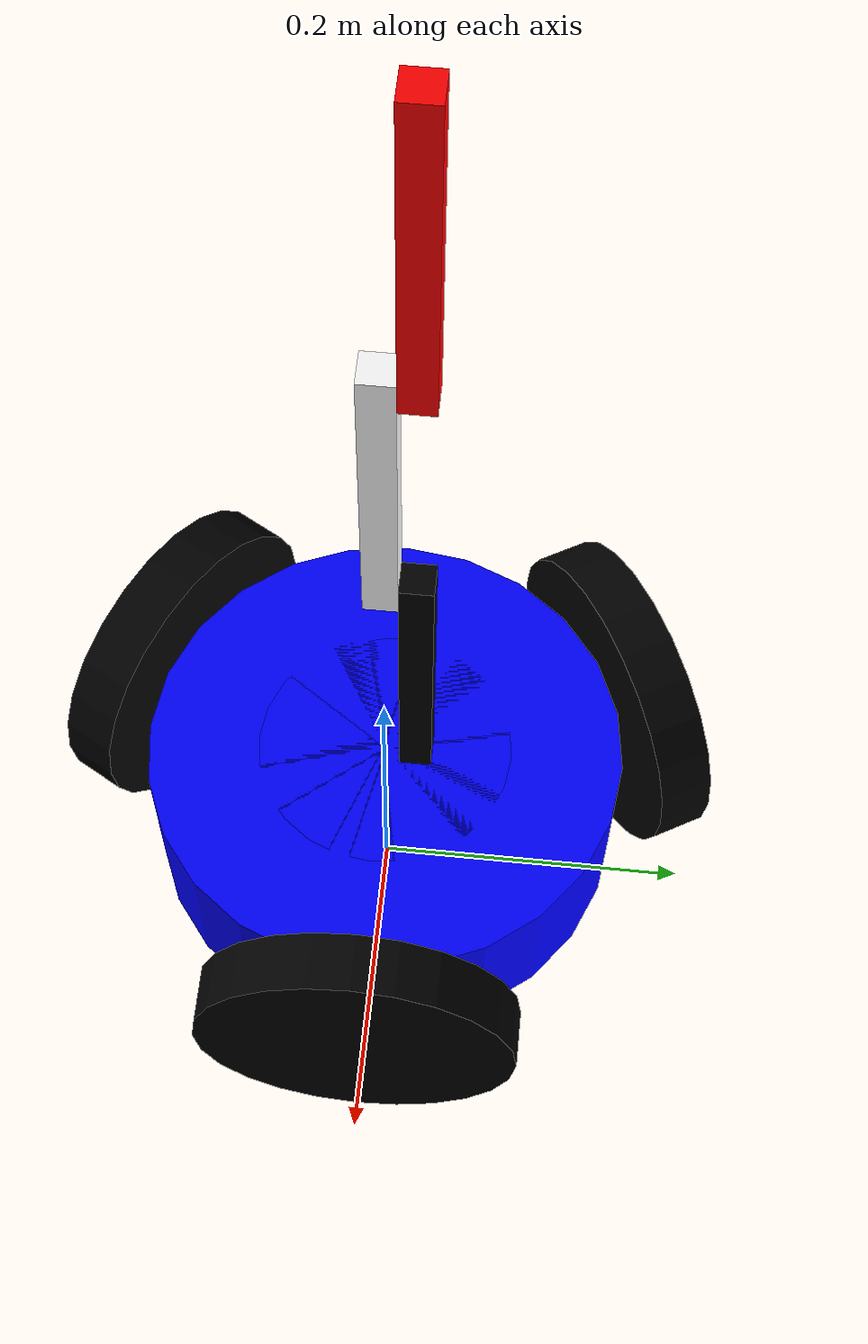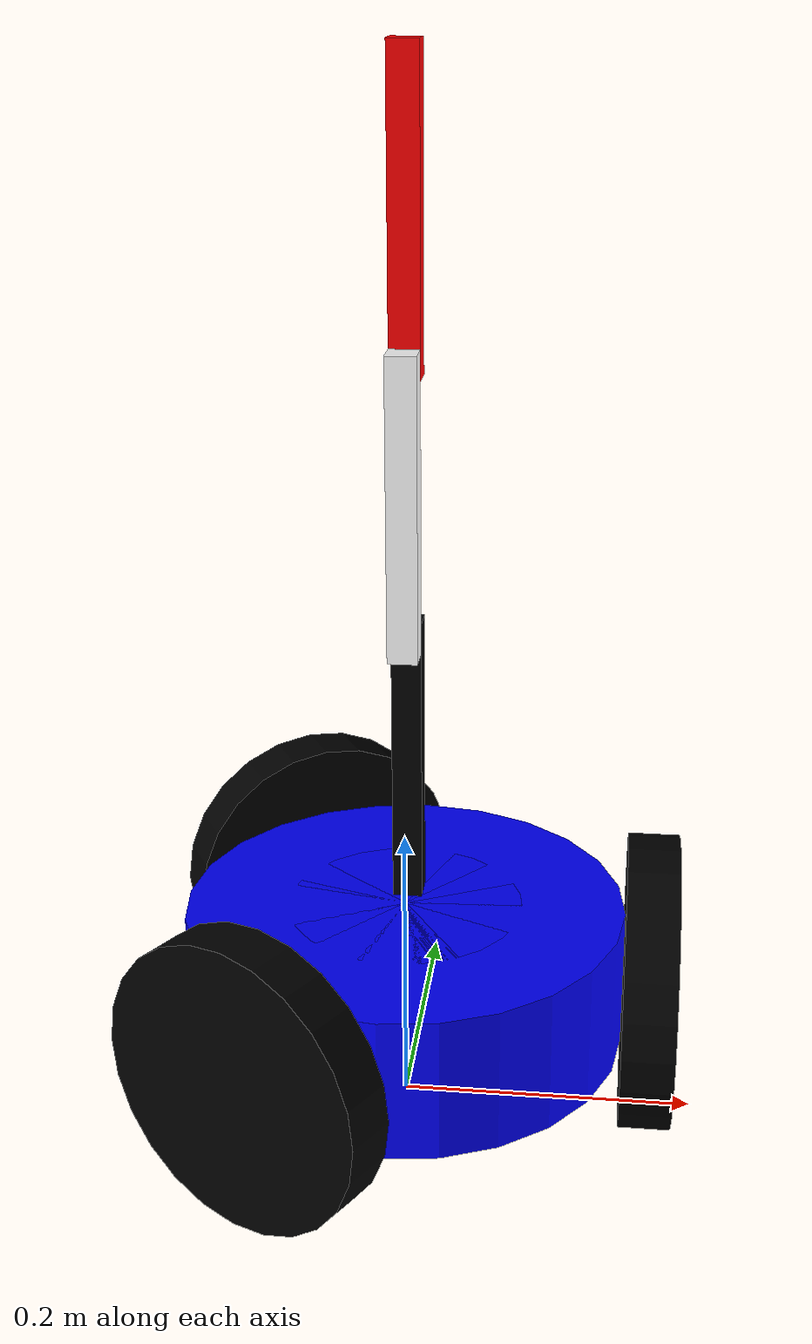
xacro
<?xml version="1.0"?>
<robot xmlns:xacro="http://www.ros.org/wiki/xacro" name="omni_mobile">
    <xacro:include filename="$(find lib_omni_mobile)/urdf/materials.xacro" />
	<xacro:property name="PI" value="3.14" />
    <xacro:property name="base_link_length" value="0.1" />
    <xacro:property name="base_link_radius" value="0.15" />
	<xacro:property name="wheel_length" value="0.035" />
	<xacro:property name="wheel_radius" value="0.1" />
	<xacro:property name="offset" value="0.02" />
    <xacro:property name="base_arm_length" value="0.05" />
    <xacro:property name="base_arm_radius" value="0.08" />
    <xacro:property name="link_width" value="0.02" />
	<xacro:property name="link1_length" value="0.20" />
	<xacro:property name="link2_length" value="0.20" />
	<xacro:property name="link3_length" value="0.20" />

	<!-- Mobile -->
    <link name="base_link">
		<visual>
			<geometry>
				<cylinder length="${base_link_length}" radius="${base_link_radius}"/>
			</geometry>
			<origin xyz="0 0 ${base_link_length/2+wheel_radius/2}"/>
			<material name="blue"/>
		</visual>
		<collision>
			<geometry>
				<cylinder length="${base_link_length}" radius="${base_link_radius}"/>
			</geometry>
			<origin xyz="0 0 ${base_link_length/2+wheel_radius/2}"/>
			<material name="blue"/>
		</collision>
	</link>

	<joint name="jwheel_1" type="revolute">
		<parent link="base_link"/>
		<child link="wheel_1"/>
		<origin xyz="${base_link_radius+wheel_length/2} 0 ${base_link_length}" rpy="0 ${PI/2} 0"/>
		<axis xyz="0 0 1"/>
		<limit effort="1000" lower="${-PI}" upper="${PI}" velocity="5"/>
	</joint>

	<link name="wheel_1">
		<visual>
			<geometry>
				<cylinder length="${wheel_length}" radius="${wheel_radius}"/>
			</geometry>
			<origin xyz="0 0 0"/>
			<material name="black"/>
		</visual>
		<collision>
			<geometry>
				<cylinder length="${wheel_length}" radius="${wheel_radius}"/>
			</geometry>
			<origin xyz="0 0 0"/>
			<material name="black"/>
		</collision>
	</link>

	<joint name="jwheel_2" type="revolute">
		<parent link="base_link"/>
		<child link="wheel_2"/>
		<origin xyz="${-0.5*(base_link_radius+wheel_length/2)} ${0.866*(base_link_radius+wheel_length/2)} ${base_link_length}" rpy="0 ${PI/2} ${2*PI/3}"/>
		<axis xyz="0 0 1"/>
		<limit effort="1000" lower="${-PI}" upper="${PI}" velocity="5"/>
	</joint>

	<link name="wheel_2">
		<visual>
			<geometry>
				<cylinder length="${wheel_length}" radius="${wheel_radius}"/>
			</geometry>
			<origin xyz="0 0 0"/>
			<material name="black"/>
		</visual>
		<collision>
			<geometry>
				<cylinder length="${wheel_length}" radius="${wheel_radius}"/>
			</geometry>
			<origin xyz="0 0 0"/>
			<material name="black"/>
		</collision>
	</link>

	<joint name="jwheel_3" type="revolute">
		<parent link="base_link"/>
		<child link="wheel_3"/>
		<origin xyz="${-0.5*(base_link_radius+wheel_length/2)} ${-0.866*(base_link_radius+wheel_length/2)} ${base_link_length}" rpy="0 ${PI/2} ${-2*PI/3}"/>
		<axis xyz="0 0 1"/>
		<limit effort="1000" lower="${-PI}" upper="${PI}" velocity="5"/>
	</joint>

	<link name="wheel_3">
		<visual>
			<geometry>
				<cylinder length="${wheel_length}" radius="${wheel_radius}"/>
			</geometry>
			<origin xyz="0 0 0"/>
			<material name="black"/>
		</visual>
		<collision>
			<geometry>
				<cylinder length="${wheel_length}" radius="${wheel_radius}"/>
			</geometry>
			<origin xyz="0 0 0"/>
			<material name="black"/>
		</collision>
	</link>

	<!-- Planar 3DOF Arm -->
	<joint name="rigid" type="fixed">
		<parent link="base_link"/>
		<child link="base_arm"/>
		<origin xyz="0 0 ${base_link_length/2+wheel_radius/2}" rpy="0 0 0"/>
		<axis xyz="0 0 1"/>
	</joint>

	<link name="base_arm">
		<visual>
			<geometry>
				<cylinder length="${base_arm_length}" radius="${base_arm_radius}"/>
			</geometry>
			<origin xyz="0.0 0.0 ${base_arm_length/2}"/>
			<material name="blue"/>
		</visual>
		<collision>
			<geometry>
				<cylinder length="${base_arm_length}" radius="${base_arm_radius}"/>
			</geometry>
			<origin xyz="0.0 0.0 ${base_arm_length/2}"/>
			<material name="blue"/>
		</collision>
	</link>

	<joint name="joint_1" type="revolute">
		<parent link="base_arm"/>
		<child link="link_1"/>
		<origin xyz="0.0 ${link_width} ${base_arm_length+offset}"/>
		<axis xyz="0 1 0"/>
		<limit effort="1000" lower="-3.14" upper="3.14" velocity="5"/>
	</joint>

	<link name="link_1">
		<visual>
			<geometry>
				<box size="${link_width} ${link_width} ${link1_length}"/>
			</geometry>
			<origin xyz="0.0 0.0 ${link1_length/2-offset}"/>
			<material name="black"/>
		</visual>
		<collision>
			<geometry>
				<box size="${link_width} ${link_width} ${link1_length}"/>
			</geometry>
			<origin xyz="0.0 0.0 ${link1_length/2-offset}"/>
			<material name="black"/>
		</collision>
	</link>

	<joint name="joint_2" type="revolute">
		<parent link="link_1"/>
		<child link="link_2"/>
		<origin xyz="0.0 ${-link_width} ${link2_length-offset}"/>
		<axis xyz="0 1 0"/>
		<limit effort="1000" lower="-3.14" upper="3.14" velocity="5"/>
	</joint>

	<link name="link_2">
		<visual>
			<geometry>
				<box size="${link_width} ${link_width} ${link2_length}"/>
			</geometry>
			<origin xyz="0.0 0.0 ${link2_length/2-offset}"/>
			<material name="white"/>
		</visual>
		<collision>
			<geometry>
				<box size="${link_width} ${link_width} ${link2_length}"/>
			</geometry>
			<origin xyz="0.0 0.0 ${link2_length/2-offset}"/>
			<material name="white"/>
		</collision>
	</link>

	<joint name="joint_3" type="revolute">
		<parent link="link_2"/>
		<child link="link_3"/>
		<origin xyz="0.0 ${link_width} ${link3_length-offset}"/>
		<axis xyz="0 1 0"/>
		<limit effort="1000" lower="-3.14" upper="3.14" velocity="5"/>
	</joint>

	<link name="link_3">
		<visual>
			<geometry>
				<box size="${link_width} ${link_width} ${link3_length}"/>
			</geometry>
			<origin xyz="0.0 0.0 ${link3_length/2-offset}"/>
			<material name="red"/>
		</visual>
		<collision>
			<geometry>
				<box size="${link_width} ${link_width} ${link3_length}"/>
			</geometry>
			<origin xyz="0.0 0.0 ${link3_length/2-offset}"/>
		</collision>
	</link>
</robot>

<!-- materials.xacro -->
<robot>
    <material name="blue">
		<color rgba="0 0 1 1"/>
	</material>
	<material name="red">
		<color rgba="1 0 0 1"/>
	</material>
	<material name="green">
		<color rgba="0 1 0 1"/>
	</material>
	<material name="black">
		<color rgba="0 0 0 1"/>
	</material>
	<material name="white">
		<color rgba="1 1 1 1"/>
	</material>
</robot>
